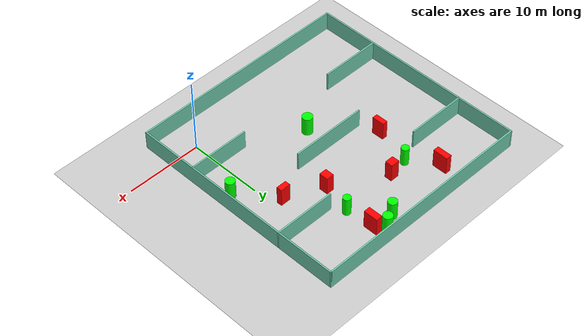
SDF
<sdf version="1.7">
 <world name="default">
  <light name="sun" type="directional">
   <pose>0 0 10 0 -0 0</pose>
   <diffuse>0.8 0.8 0.8 1</diffuse>
   <specular>0.2 0.2 0.2 1</specular>
   <attenuation>
    <range>1000</range>
    <constant>0.9</constant>
    <linear>0.01</linear>
    <quadratic>0.001</quadratic>
   </attenuation>
   <direction>-0.5 0.1 -0.9</direction>
   <spot><inner_angle>0</inner_angle><outer_angle>0</outer_angle><falloff>0</falloff></spot>
  </light>
  <model name="ground_plane">
   <static>1</static>
   <link name="link">
    <collision name="collision">
     <geometry><plane><normal>0 0 1</normal><size>100 100</size></plane></geometry>
     <surface>
      <contact><collide_bitmask>65535</collide_bitmask></contact>
      <friction><ode><mu>100</mu><mu2>50</mu2></ode></friction>
     </surface>
    </collision>
    <visual name="visual">
     <cast_shadows>0</cast_shadows>
     <geometry><plane><normal>0 0 1</normal><size>100 100</size></plane></geometry>
     <material>
      <script><uri>file://media/materials/scripts/gazebo.material</uri><name>Gazebo/Grey</name></script>
     </material>
    </visual>
   </link>
  </model>
  <gravity>0 0 -9.8</gravity>
  <magnetic_field>6e-06 2.3e-05 -4.2e-05</magnetic_field>
  <atmosphere type="adiabatic"/>
  <physics type="ode">
   <max_step_size>0.001</max_step_size>
   <real_time_factor>1</real_time_factor>
   <real_time_update_rate>1000</real_time_update_rate>
  </physics>
  <scene><ambient>0.4 0.4 0.4 1</ambient><background>0.7 0.7 0.7 1</background><shadows>1</shadows></scene>
  <spherical_coordinates>
   <surface_model>EARTH_WGS84</surface_model>
   <latitude_deg>0</latitude_deg>
   <longitude_deg>0</longitude_deg>
   <elevation>0</elevation>
   <heading_deg>0</heading_deg>
  </spherical_coordinates>
  <model name="my_base_walls">
   <link name="Wall_10">
    <collision name="Wall_10_Collision">
     <geometry><box><size>8.2 0.2 2.5</size></box></geometry>
     <pose>0 0 1.25 0 -0 0</pose>
    </collision>
    <visual name="Wall_10_Visual">
     <pose>0 0 1.25 0 -0 0</pose>
     <geometry><box><size>8.2 0.2 2.5</size></box></geometry>
     <material>
      <script><uri>file://media/materials/scripts/gazebo.material</uri><name>Gazebo/Grey</name></script>
      <ambient>0.435294 0.796078 0.67451 1</ambient>
     </material>
     <meta><layer>0</layer></meta>
    </visual>
    <pose>-11 -7 0 0 -0 0</pose>
   </link>
   <link name="Wall_12">
    <collision name="Wall_12_Collision">
     <geometry><box><size>8.2 0.2 2.5</size></box></geometry>
     <pose>0 0 1.25 0 -0 0</pose>
    </collision>
    <visual name="Wall_12_Visual">
     <pose>0 0 1.25 0 -0 0</pose>
     <geometry><box><size>8.2 0.2 2.5</size></box></geometry>
     <material>
      <script><uri>file://media/materials/scripts/gazebo.material</uri><name>Gazebo/Grey</name></script>
      <ambient>0.435294 0.796078 0.67451 1</ambient>
     </material>
     <meta><layer>0</layer></meta>
    </visual>
    <pose>-11 7 0 0 -0 0</pose>
   </link>
   <link name="Wall_14">
    <collision name="Wall_14_Collision">
     <geometry><box><size>8.2 0.2 2.5</size></box></geometry>
     <pose>0 0 1.25 0 -0 0</pose>
    </collision>
    <visual name="Wall_14_Visual">
     <pose>0 0 1.25 0 -0 0</pose>
     <geometry><box><size>8.2 0.2 2.5</size></box></geometry>
     <material>
      <script><uri>file://media/materials/scripts/gazebo.material</uri><name>Gazebo/Grey</name></script>
      <ambient>0.435294 0.796078 0.67451 1</ambient>
     </material>
     <meta><layer>0</layer></meta>
    </visual>
    <pose>11 7 0 0 -0 3.14159</pose>
   </link>
   <link name="Wall_16">
    <collision name="Wall_16_Collision">
     <geometry><box><size>10.2 0.2 2.5</size></box></geometry>
     <pose>0 0 1.25 0 -0 0</pose>
    </collision>
    <visual name="Wall_16_Visual">
     <pose>0 0 1.25 0 -0 0</pose>
     <geometry><box><size>10.2 0.2 2.5</size></box></geometry>
     <material>
      <script><uri>file://media/materials/scripts/gazebo.material</uri><name>Gazebo/Grey</name></script>
      <ambient>0.435294 0.796078 0.67451 1</ambient>
     </material>
     <meta><layer>0</layer></meta>
    </visual>
    <pose>0 0 0 0 -0 3.14159</pose>
   </link>
   <link name="Wall_2">
    <collision name="Wall_2_Collision">
     <geometry><box><size>30.2 0.2 2.5</size></box></geometry>
     <pose>0 0 1.25 0 -0 0</pose>
    </collision>
    <visual name="Wall_2_Visual">
     <pose>0 0 1.25 0 -0 0</pose>
     <geometry><box><size>30.2 0.2 2.5</size></box></geometry>
     <material>
      <script><uri>file://media/materials/scripts/gazebo.material</uri><name>Gazebo/Grey</name></script>
      <ambient>0.435294 0.796078 0.67451 1</ambient>
     </material>
     <meta><layer>0</layer></meta>
    </visual>
    <pose>0 -15 0 0 -0 3.14159</pose>
   </link>
   <link name="Wall_3">
    <collision name="Wall_3_Collision">
     <geometry><box><size>30.2 0.2 2.5</size></box></geometry>
     <pose>0 0 1.25 0 -0 0</pose>
    </collision>
    <visual name="Wall_3_Visual">
     <pose>0 0 1.25 0 -0 0</pose>
     <geometry><box><size>30.2 0.2 2.5</size></box></geometry>
     <material>
      <script><uri>file://media/materials/scripts/gazebo.material</uri><name>Gazebo/Grey</name></script>
      <ambient>0.435294 0.796078 0.67451 1</ambient>
     </material>
     <meta><layer>0</layer></meta>
    </visual>
    <pose>-15 0 0 0 -0 1.5708</pose>
   </link>
   <link name="Wall_4">
    <collision name="Wall_4_Collision">
     <geometry><box><size>30.2 0.2 2.5</size></box></geometry>
     <pose>0 0 1.25 0 -0 0</pose>
    </collision>
    <visual name="Wall_4_Visual">
     <pose>0 0 1.25 0 -0 0</pose>
     <geometry><box><size>30.2 0.2 2.5</size></box></geometry>
     <material>
      <script><uri>file://media/materials/scripts/gazebo.material</uri><name>Gazebo/Grey</name></script>
      <ambient>0.435294 0.796078 0.67451 1</ambient>
     </material>
     <meta><layer>0</layer></meta>
    </visual>
    <pose>0 15 0 0 -0 0</pose>
   </link>
   <link name="Wall_6">
    <collision name="Wall_6_Collision">
     <geometry><box><size>30.2 0.2 2.5</size></box></geometry>
     <pose>0 0 1.25 0 -0 0</pose>
    </collision>
    <visual name="Wall_6_Visual">
     <pose>0 0 1.25 0 -0 0</pose>
     <geometry><box><size>30.2 0.2 2.5</size></box></geometry>
     <material>
      <script><uri>file://media/materials/scripts/gazebo.material</uri><name>Gazebo/Grey</name></script>
      <ambient>0.435294 0.796078 0.67451 1</ambient>
     </material>
     <meta><layer>0</layer></meta>
    </visual>
    <pose>15 0 0 0 -0 1.5708</pose>
   </link>
   <link name="Wall_8">
    <collision name="Wall_8_Collision">
     <geometry><box><size>8.2 0.2 2.5</size></box></geometry>
     <pose>0 0 1.25 0 -0 0</pose>
    </collision>
    <visual name="Wall_8_Visual">
     <pose>0 0 1.25 0 -0 0</pose>
     <geometry><box><size>8.2 0.2 2.5</size></box></geometry>
     <material>
      <script><uri>file://media/materials/scripts/gazebo.material</uri><name>Gazebo/Grey</name></script>
      <ambient>0.435294 0.796078 0.67451 1</ambient>
     </material>
     <meta><layer>0</layer></meta>
    </visual>
    <pose>11 -7 0 0 -0 3.14159</pose>
   </link>
   <static>1</static>
   <pose>-11 11 0 0 -0 0</pose>
  </model>
  <model name="cylinder1">
   <static>1</static>
   <link name="link">
    <inertial>
     <mass>1</mass>
     <inertia><ixx>0.5</ixx><ixy>0</ixy><ixz>0</ixz><iyy>0.5</iyy><iyz>0</iyz><izz>1</izz></inertia>
    </inertial>
    <collision name="collision">
     <geometry><cylinder><radius>0.6057458970275864</radius><length>2.5</length></cylinder></geometry>
    </collision>
    <visual name="visual">
     <geometry><cylinder><radius>0.6057458970275864</radius><length>2.5</length></cylinder></geometry>
     <material>
      <ambient>0 1 0 1</ambient>
      <diffuse>0 1 0 1</diffuse>
      <specular>0.1 0.1 0.1 1</specular>
      <emissive>0 0 0 0</emissive>
     </material>
    </visual>
   </link>
   <pose>-8.182369760626163 23.72129703159435 1.25 0 0 0</pose>
  </model>
  <model name="cylinder2">
   <static>1</static>
   <link name="link">
    <inertial>
     <mass>1</mass>
     <inertia><ixx>0.5</ixx><ixy>0</ixy><ixz>0</ixz><iyy>0.5</iyy><iyz>0</iyz><izz>1</izz></inertia>
    </inertial>
    <collision name="collision">
     <geometry><cylinder><radius>0.6324717291701951</radius><length>2.5</length></cylinder></geometry>
    </collision>
    <visual name="visual">
     <geometry><cylinder><radius>0.6324717291701951</radius><length>2.5</length></cylinder></geometry>
     <material>
      <ambient>0 1 0 1</ambient>
      <diffuse>0 1 0 1</diffuse>
      <specular>0.1 0.1 0.1 1</specular>
      <emissive>0 0 0 0</emissive>
     </material>
    </visual>
   </link>
   <pose>2.436562641356627 8.561056557094833 1.25 0 0 0</pose>
  </model>
  <model name="cylinder3">
   <static>1</static>
   <link name="link">
    <inertial>
     <mass>1</mass>
     <inertia><ixx>0.5</ixx><ixy>0</ixy><ixz>0</ixz><iyy>0.5</iyy><iyz>0</iyz><izz>1</izz></inertia>
    </inertial>
    <collision name="collision">
     <geometry><cylinder><radius>0.5103855926638983</radius><length>2.5</length></cylinder></geometry>
    </collision>
    <visual name="visual">
     <geometry><cylinder><radius>0.5103855926638983</radius><length>2.5</length></cylinder></geometry>
     <material>
      <ambient>0 1 0 1</ambient>
      <diffuse>0 1 0 1</diffuse>
      <specular>0.1 0.1 0.1 1</specular>
      <emissive>0 0 0 0</emissive>
     </material>
    </visual>
   </link>
   <pose>-15.345896936946023 19.067734729678616 1.25 0 0 0</pose>
  </model>
  <model name="cylinder4">
   <static>1</static>
   <link name="link">
    <inertial>
     <mass>1</mass>
     <inertia><ixx>0.5</ixx><ixy>0</ixy><ixz>0</ixz><iyy>0.5</iyy><iyz>0</iyz><izz>1</izz></inertia>
    </inertial>
    <collision name="collision">
     <geometry><cylinder><radius>0.6297719052034945</radius><length>2.5</length></cylinder></geometry>
    </collision>
    <visual name="visual">
     <geometry><cylinder><radius>0.6297719052034945</radius><length>2.5</length></cylinder></geometry>
     <material>
      <ambient>0 1 0 1</ambient>
      <diffuse>0 1 0 1</diffuse>
      <specular>0.1 0.1 0.1 1</specular>
      <emissive>0 0 0 0</emissive>
     </material>
    </visual>
   </link>
   <pose>-6.2566311145652485 24.785359740400743 1.25 0 0 0</pose>
  </model>
  <model name="cylinder5">
   <static>1</static>
   <link name="link">
    <inertial>
     <mass>1</mass>
     <inertia><ixx>0.5</ixx><ixy>0</ixy><ixz>0</ixz><iyy>0.5</iyy><iyz>0</iyz><izz>1</izz></inertia>
    </inertial>
    <collision name="collision">
     <geometry><cylinder><radius>0.6875691505903032</radius><length>2.5</length></cylinder></geometry>
    </collision>
    <visual name="visual">
     <geometry><cylinder><radius>0.6875691505903032</radius><length>2.5</length></cylinder></geometry>
     <material>
      <ambient>0 1 0 1</ambient>
      <diffuse>0 1 0 1</diffuse>
      <specular>0.1 0.1 0.1 1</specular>
      <emissive>0 0 0 0</emissive>
     </material>
    </visual>
   </link>
   <pose>-11.06385662837394 7.412277576552793 1.25 0 0 0</pose>
  </model>
  <model name="cylinder6">
   <static>1</static>
   <link name="link">
    <inertial>
     <mass>1</mass>
     <inertia><ixx>0.5</ixx><ixy>0</ixy><ixz>0</ixz><iyy>0.5</iyy><iyz>0</iyz><izz>1</izz></inertia>
    </inertial>
    <collision name="collision">
     <geometry><cylinder><radius>0.5152797121770883</radius><length>2.5</length></cylinder></geometry>
    </collision>
    <visual name="visual">
     <geometry><cylinder><radius>0.5152797121770883</radius><length>2.5</length></cylinder></geometry>
     <material>
      <ambient>0 1 0 1</ambient>
      <diffuse>0 1 0 1</diffuse>
      <specular>0.1 0.1 0.1 1</specular>
      <emissive>0 0 0 0</emissive>
     </material>
    </visual>
   </link>
   <pose>-5.014168352722649 19.705402797442233 1.25 0 0 0</pose>
  </model>
  <model name="box1">
   <static>1</static>
   <link name="link">
    <inertial>
     <mass>1</mass>
     <inertia><ixx>0.083</ixx><ixy>0</ixy><ixz>0</ixz><iyy>0.083</iyy><iyz>0</iyz><izz>0.083</izz></inertia>
    </inertial>
    <collision name="collision">
     <geometry><box><size>1.1909562631051944 1.0080486350925844 2.5</size></box></geometry>
    </collision>
    <visual name="visual">
     <geometry><box><size>1.1909562631051944 1.0080486350925844 2.5</size></box></geometry>
     <material>
      <ambient>1 0 0 1</ambient>
      <diffuse>1 0 0 1</diffuse>
      <specular>0.1 0.1 0.1 1</specular>
      <emissive>0 0 0 0</emissive>
     </material>
    </visual>
    <sensor name="my_contact" type="contact">
     <contact><collision>box_collision</collision><topic>__default_topic__</topic></contact>
    </sensor>
   </link>
   <pose>-12.673199382580755 19.499347367228726 1.25 0 0 0</pose>
  </model>
  <model name="box2">
   <static>1</static>
   <link name="link">
    <inertial>
     <mass>1</mass>
     <inertia><ixx>0.083</ixx><ixy>0</ixy><ixz>0</ixz><iyy>0.083</iyy><iyz>0</iyz><izz>0.083</izz></inertia>
    </inertial>
    <collision name="collision">
     <geometry><box><size>0.7093105705078864 1.6652482043662664 2.5</size></box></geometry>
    </collision>
    <visual name="visual">
     <geometry><box><size>0.7093105705078864 1.6652482043662664 2.5</size></box></geometry>
     <material>
      <ambient>1 0 0 1</ambient>
      <diffuse>1 0 0 1</diffuse>
      <specular>0.1 0.1 0.1 1</specular>
      <emissive>0 0 0 0</emissive>
     </material>
    </visual>
    <sensor name="my_contact" type="contact">
     <contact><collision>box_collision</collision><topic>__default_topic__</topic></contact>
    </sensor>
   </link>
   <pose>-16.684684174681365 13.846374480702135 1.25 0 0 0</pose>
  </model>
  <model name="box3">
   <static>1</static>
   <link name="link">
    <inertial>
     <mass>1</mass>
     <inertia><ixx>0.083</ixx><ixy>0</ixy><ixz>0</ixz><iyy>0.083</iyy><iyz>0</iyz><izz>0.083</izz></inertia>
    </inertial>
    <collision name="collision">
     <geometry><box><size>1.0141461564504928 1.216618745962221 2.5</size></box></geometry>
    </collision>
    <visual name="visual">
     <geometry><box><size>1.0141461564504928 1.216618745962221 2.5</size></box></geometry>
     <material>
      <ambient>1 0 0 1</ambient>
      <diffuse>1 0 0 1</diffuse>
      <specular>0.1 0.1 0.1 1</specular>
      <emissive>0 0 0 0</emissive>
     </material>
    </visual>
    <sensor name="my_contact" type="contact">
     <contact><collision>box_collision</collision><topic>__default_topic__</topic></contact>
    </sensor>
   </link>
   <pose>-5.940952567095799 15.601210185448483 1.25 0 0 0</pose>
  </model>
  <model name="box4">
   <static>1</static>
   <link name="link">
    <inertial>
     <mass>1</mass>
     <inertia><ixx>0.083</ixx><ixy>0</ixy><ixz>0</ixz><iyy>0.083</iyy><iyz>0</iyz><izz>0.083</izz></inertia>
    </inertial>
    <collision name="collision">
     <geometry><box><size>0.8665777067102913 1.93395843863605 2.5</size></box></geometry>
    </collision>
    <visual name="visual">
     <geometry><box><size>0.8665777067102913 1.93395843863605 2.5</size></box></geometry>
     <material>
      <ambient>1 0 0 1</ambient>
      <diffuse>1 0 0 1</diffuse>
      <specular>0.1 0.1 0.1 1</specular>
      <emissive>0 0 0 0</emissive>
     </material>
    </visual>
    <sensor name="my_contact" type="contact">
     <contact><collision>box_collision</collision><topic>__default_topic__</topic></contact>
    </sensor>
   </link>
   <pose>-5.267837987330587 23.46812859116927 1.25 0 0 0</pose>
  </model>
  <model name="box5">
   <static>1</static>
   <link name="link">
    <inertial>
     <mass>1</mass>
     <inertia><ixx>0.083</ixx><ixy>0</ixy><ixz>0</ixz><iyy>0.083</iyy><iyz>0</iyz><izz>0.083</izz></inertia>
    </inertial>
    <collision name="collision">
     <geometry><box><size>1.3695780735963194 0.7372871204501753 2.5</size></box></geometry>
    </collision>
    <visual name="visual">
     <geometry><box><size>1.3695780735963194 0.7372871204501753 2.5</size></box></geometry>
     <material>
      <ambient>1 0 0 1</ambient>
      <diffuse>1 0 0 1</diffuse>
      <specular>0.1 0.1 0.1 1</specular>
      <emissive>0 0 0 0</emissive>
     </material>
    </visual>
    <sensor name="my_contact" type="contact">
     <contact><collision>box_collision</collision><topic>__default_topic__</topic></contact>
    </sensor>
   </link>
   <pose>-1.2267207247052312 13.417993693683194 1.25 0 0 0</pose>
  </model>
  <model name="box6">
   <static>1</static>
   <link name="link">
    <inertial>
     <mass>1</mass>
     <inertia><ixx>0.083</ixx><ixy>0</ixy><ixz>0</ixz><iyy>0.083</iyy><iyz>0</iyz><izz>0.083</izz></inertia>
    </inertial>
    <collision name="collision">
     <geometry><box><size>0.7912201925785087 2.0247322589794288 2.5</size></box></geometry>
    </collision>
    <visual name="visual">
     <geometry><box><size>0.7912201925785087 2.0247322589794288 2.5</size></box></geometry>
     <material>
      <ambient>1 0 0 1</ambient>
      <diffuse>1 0 0 1</diffuse>
      <specular>0.1 0.1 0.1 1</specular>
      <emissive>0 0 0 0</emissive>
     </material>
    </visual>
    <sensor name="my_contact" type="contact">
     <contact><collision>box_collision</collision><topic>__default_topic__</topic></contact>
    </sensor>
   </link>
   <pose>-17.733978628228943 22.685408283528552 1.25 0 0 0</pose>
  </model>
 </world>
</sdf>
